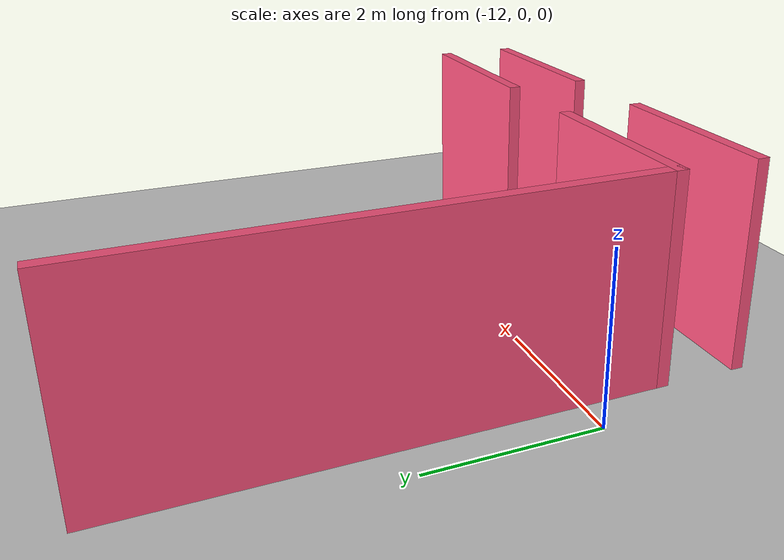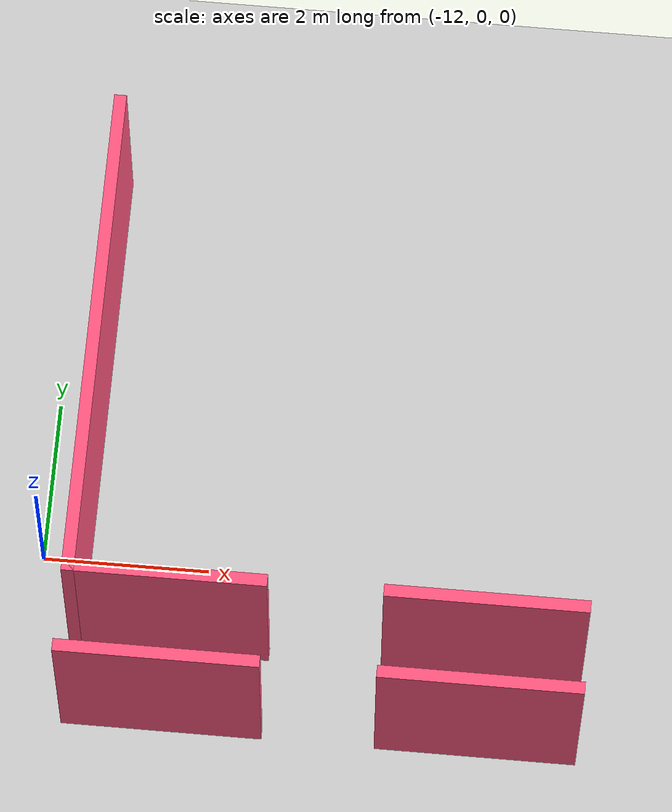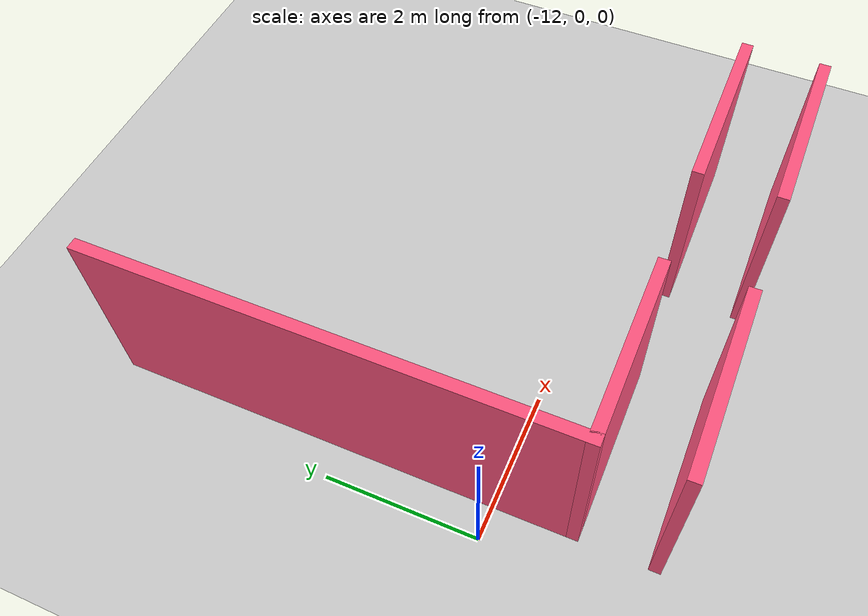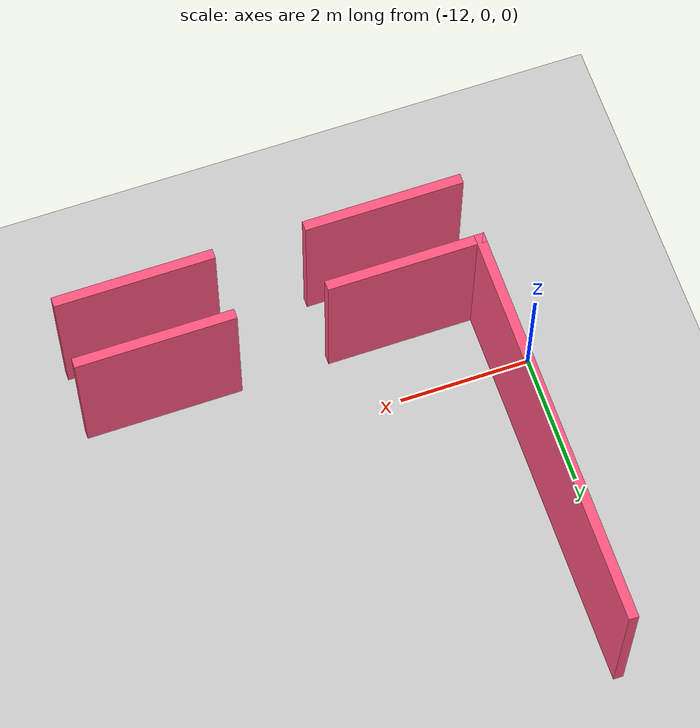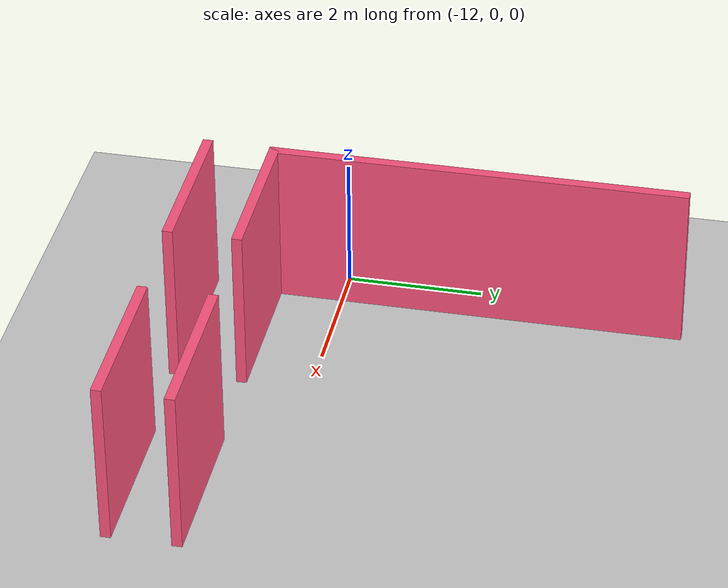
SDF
<sdf version="1.6">
 <world name="default">
  <model name="ground_plane">
   <static>1</static>
   <link name="link">
    <collision name="collision">
     <geometry><plane><normal>0 0 1</normal><size>100 100</size></plane></geometry>
     <surface><friction><ode><mu>100</mu><mu2>50</mu2></ode></friction></surface>
    </collision>
    <visual name="visual">
     <cast_shadows>0</cast_shadows>
     <geometry><plane><normal>0 0 1</normal><size>100 100</size></plane></geometry>
     <material>
      <script><uri>file://media/materials/scripts/gazebo.material</uri><name>Gazebo/Grey</name></script>
     </material>
    </visual>
   </link>
  </model>
  <model name="myWorld">
   <pose>-1.5 0 0 0 -0 0</pose>
   <link name="Wall_78">
    <collision name="Wall_78_Collision">
     <geometry><box><size>2.4 0.15 2.5</size></box></geometry>
     <pose>0 0 1.25 0 -0 0</pose>
    </collision>
    <visual name="Wall_78_Visual">
     <pose>0 0 1.25 0 -0 0</pose>
     <geometry><box><size>2.4 0.15 2.5</size></box></geometry>
     <material>
      <script><uri>file://media/materials/scripts/gazebo.material</uri><name>Gazebo/Grey</name></script>
      <ambient>1 0.333333 0.498039 1</ambient>
     </material>
     <meta><layer>0</layer></meta>
    </visual>
    <pose>-8.875 -2 0 0 -0 0</pose>
   </link>
   <link name="Wall_80">
    <collision name="Wall_80_Collision">
     <geometry><box><size>2.4 0.15 2.5</size></box></geometry>
     <pose>0 0 1.25 0 -0 0</pose>
    </collision>
    <visual name="Wall_80_Visual">
     <pose>0 0 1.25 0 -0 0</pose>
     <geometry><box><size>2.4 0.15 2.5</size></box></geometry>
     <material>
      <script><uri>file://media/materials/scripts/gazebo.material</uri><name>Gazebo/Grey</name></script>
      <ambient>1 0.333333 0.498039 1</ambient>
     </material>
     <meta><layer>0</layer></meta>
    </visual>
    <pose>-5.125 -2 0 0 -0 0</pose>
   </link>
   <link name="Wall_82">
    <collision name="Wall_82_Collision">
     <geometry><box><size>2.4 0.15 2.5</size></box></geometry>
     <pose>0 0 1.25 0 -0 0</pose>
    </collision>
    <visual name="Wall_82_Visual">
     <pose>0 0 1.25 0 -0 0</pose>
     <geometry><box><size>2.4 0.15 2.5</size></box></geometry>
     <material>
      <script><uri>file://media/materials/scripts/gazebo.material</uri><name>Gazebo/Grey</name></script>
      <ambient>1 0.333333 0.498039 1</ambient>
     </material>
     <meta><layer>0</layer></meta>
    </visual>
    <pose>-5.125 -1 0 0 -0 0</pose>
   </link>
   <link name="Wall_88">
    <collision name="Wall_88_Collision">
     <geometry><box><size>2.4 0.15 2.5</size></box></geometry>
     <pose>0 0 1.25 0 -0 0</pose>
    </collision>
    <visual name="Wall_88_Visual">
     <pose>0 0 1.25 0 -0 0</pose>
     <geometry><box><size>2.4 0.15 2.5</size></box></geometry>
     <material>
      <script><uri>file://media/materials/scripts/gazebo.material</uri><name>Gazebo/Grey</name></script>
      <ambient>1 0.333333 0.498039 1</ambient>
     </material>
     <meta><layer>0</layer></meta>
    </visual>
    <pose>-8.875 -1 0 0 -0 3.14159</pose>
   </link>
   <link name="Wall_89">
    <collision name="Wall_89_Collision">
     <geometry><box><size>6.15 0.15 2.5</size></box></geometry>
     <pose>0 0 1.25 0 -0 0</pose>
    </collision>
    <visual name="Wall_89_Visual">
     <pose>0 0 1.25 0 -0 0</pose>
     <geometry><box><size>6.15 0.15 2.5</size></box></geometry>
     <material>
      <script><uri>file://media/materials/scripts/gazebo.material</uri><name>Gazebo/Grey</name></script>
      <ambient>1 0.333333 0.498039 1</ambient>
     </material>
     <meta><layer>0</layer></meta>
    </visual>
    <pose>-10 2 0 0 -0 1.5708</pose>
   </link>
   <static>1</static>
  </model>
 </world>
</sdf>
